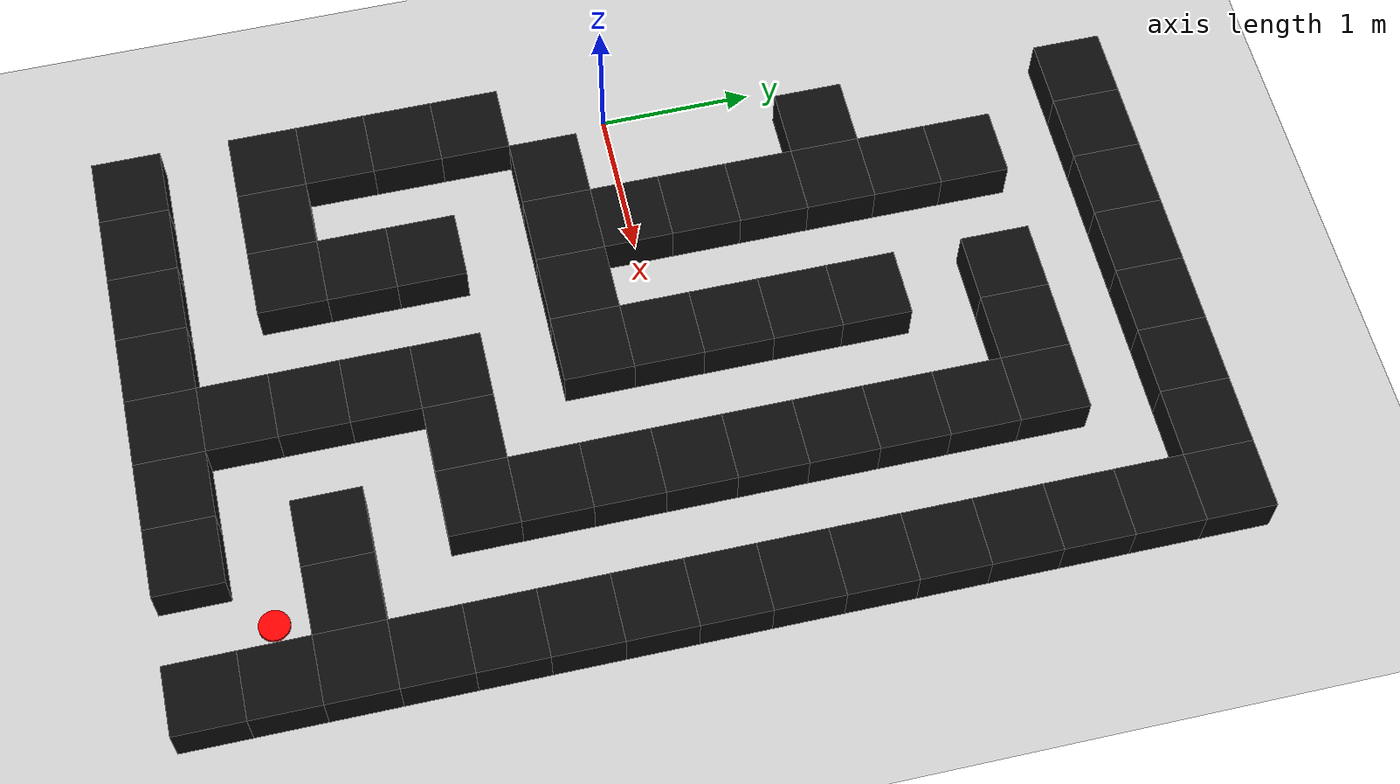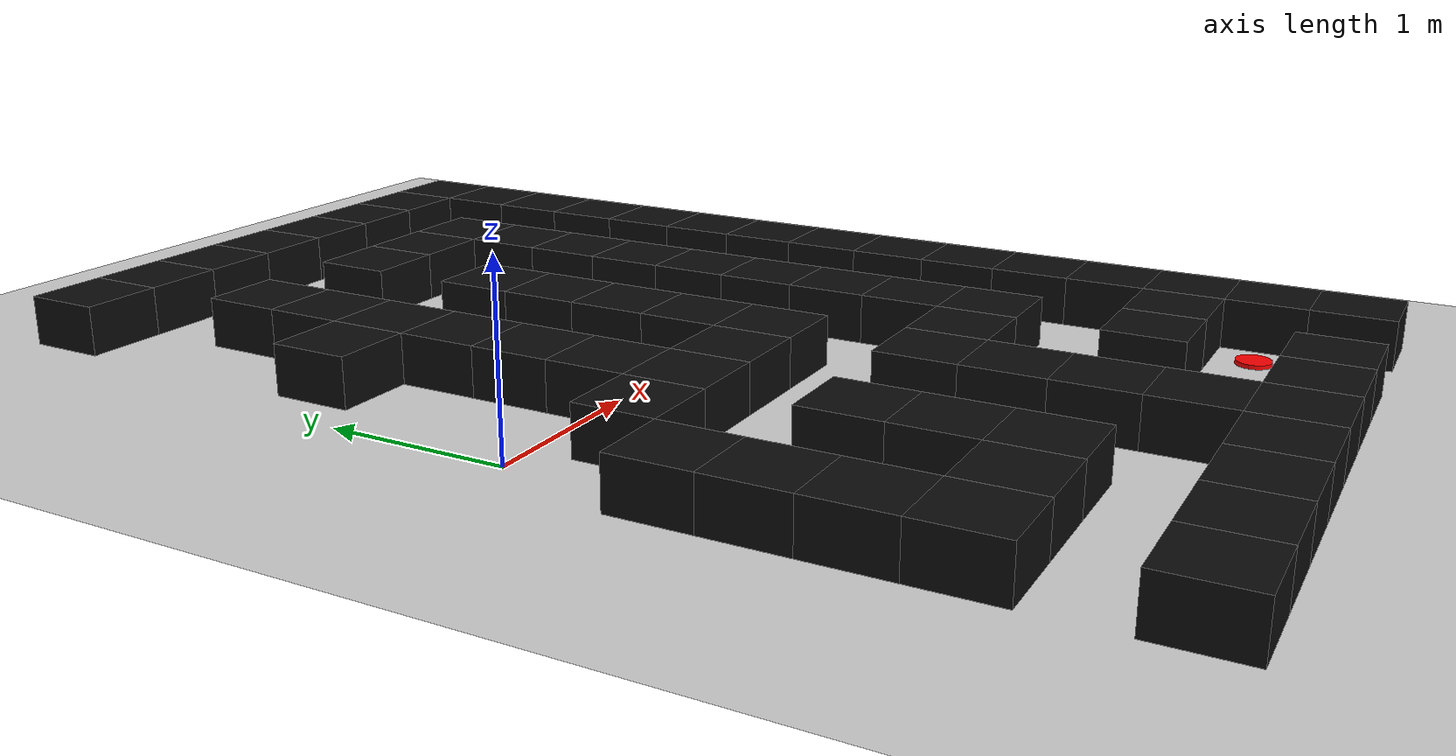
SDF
<sdf version="1.9">
 <world name="maze_islands_world">
  <model name="ground_plane">
   <static>true</static>
   <link name="link">
    <collision name="collision">
     <geometry><plane><normal>0 0 1</normal><size>30 30</size></plane></geometry>
    </collision>
    <visual name="visual">
     <geometry><plane><normal>0 0 1</normal><size>30 30</size></plane></geometry>
     <material><ambient>0.82 0.82 0.82 1</ambient><diffuse>0.82 0.82 0.82 1</diffuse></material>
    </visual>
   </link>
  </model>
  <model name="wall_8">
   <static>true</static>
   <pose>0.45 3.15 0.14 0 0 0</pose>
   <link name="link">
    <collision name="collision"><geometry><box><size>0.45 0.45 0.28</size></box></geometry></collision>
    <visual name="visual">
     <geometry><box><size>0.45 0.45 0.28</size></box></geometry>
     <material><ambient>0.05 0.05 0.05 1</ambient><diffuse>0.05 0.05 0.05 1</diffuse></material>
    </visual>
   </link>
  </model>
  <model name="wall_9">
   <static>true</static>
   <pose>0.9 3.15 0.14 0 0 0</pose>
   <link name="link">
    <collision name="collision"><geometry><box><size>0.45 0.45 0.28</size></box></geometry></collision>
    <visual name="visual">
     <geometry><box><size>0.45 0.45 0.28</size></box></geometry>
     <material><ambient>0.05 0.05 0.05 1</ambient><diffuse>0.05 0.05 0.05 1</diffuse></material>
    </visual>
   </link>
  </model>
  <model name="wall_10">
   <static>true</static>
   <pose>1.35 3.15 0.14 0 0 0</pose>
   <link name="link">
    <collision name="collision"><geometry><box><size>0.45 0.45 0.28</size></box></geometry></collision>
    <visual name="visual">
     <geometry><box><size>0.45 0.45 0.28</size></box></geometry>
     <material><ambient>0.05 0.05 0.05 1</ambient><diffuse>0.05 0.05 0.05 1</diffuse></material>
    </visual>
   </link>
  </model>
  <model name="wall_11">
   <static>true</static>
   <pose>1.8 3.15 0.14 0 0 0</pose>
   <link name="link">
    <collision name="collision"><geometry><box><size>0.45 0.45 0.28</size></box></geometry></collision>
    <visual name="visual">
     <geometry><box><size>0.45 0.45 0.28</size></box></geometry>
     <material><ambient>0.05 0.05 0.05 1</ambient><diffuse>0.05 0.05 0.05 1</diffuse></material>
    </visual>
   </link>
  </model>
  <model name="wall_12">
   <static>true</static>
   <pose>2.25 3.15 0.14 0 0 0</pose>
   <link name="link">
    <collision name="collision"><geometry><box><size>0.45 0.45 0.28</size></box></geometry></collision>
    <visual name="visual">
     <geometry><box><size>0.45 0.45 0.28</size></box></geometry>
     <material><ambient>0.05 0.05 0.05 1</ambient><diffuse>0.05 0.05 0.05 1</diffuse></material>
    </visual>
   </link>
  </model>
  <model name="wall_13">
   <static>true</static>
   <pose>2.7 3.15 0.14 0 0 0</pose>
   <link name="link">
    <collision name="collision"><geometry><box><size>0.45 0.45 0.28</size></box></geometry></collision>
    <visual name="visual">
     <geometry><box><size>0.45 0.45 0.28</size></box></geometry>
     <material><ambient>0.05 0.05 0.05 1</ambient><diffuse>0.05 0.05 0.05 1</diffuse></material>
    </visual>
   </link>
  </model>
  <model name="wall_14">
   <static>true</static>
   <pose>3.15 3.15 0.14 0 0 0</pose>
   <link name="link">
    <collision name="collision"><geometry><box><size>0.45 0.45 0.28</size></box></geometry></collision>
    <visual name="visual">
     <geometry><box><size>0.45 0.45 0.28</size></box></geometry>
     <material><ambient>0.05 0.05 0.05 1</ambient><diffuse>0.05 0.05 0.05 1</diffuse></material>
    </visual>
   </link>
  </model>
  <model name="wall_15">
   <static>true</static>
   <pose>3.6 3.15 0.14 0 0 0</pose>
   <link name="link">
    <collision name="collision"><geometry><box><size>0.45 0.45 0.28</size></box></geometry></collision>
    <visual name="visual">
     <geometry><box><size>0.45 0.45 0.28</size></box></geometry>
     <material><ambient>0.05 0.05 0.05 1</ambient><diffuse>0.05 0.05 0.05 1</diffuse></material>
    </visual>
   </link>
  </model>
  <model name="wall_18">
   <static>true</static>
   <pose>3.6 2.7 0.14 0 0 0</pose>
   <link name="link">
    <collision name="collision"><geometry><box><size>0.45 0.45 0.28</size></box></geometry></collision>
    <visual name="visual">
     <geometry><box><size>0.45 0.45 0.28</size></box></geometry>
     <material><ambient>0.05 0.05 0.05 1</ambient><diffuse>0.05 0.05 0.05 1</diffuse></material>
    </visual>
   </link>
  </model>
  <model name="wall_26">
   <static>true</static>
   <pose>0.9 2.25 0.14 0 0 0</pose>
   <link name="link">
    <collision name="collision"><geometry><box><size>0.45 0.45 0.28</size></box></geometry></collision>
    <visual name="visual">
     <geometry><box><size>0.45 0.45 0.28</size></box></geometry>
     <material><ambient>0.05 0.05 0.05 1</ambient><diffuse>0.05 0.05 0.05 1</diffuse></material>
    </visual>
   </link>
  </model>
  <model name="wall_27">
   <static>true</static>
   <pose>1.8 2.25 0.14 0 0 0</pose>
   <link name="link">
    <collision name="collision"><geometry><box><size>0.45 0.45 0.28</size></box></geometry></collision>
    <visual name="visual">
     <geometry><box><size>0.45 0.45 0.28</size></box></geometry>
     <material><ambient>0.05 0.05 0.05 1</ambient><diffuse>0.05 0.05 0.05 1</diffuse></material>
    </visual>
   </link>
  </model>
  <model name="wall_28">
   <static>true</static>
   <pose>2.25 2.25 0.14 0 0 0</pose>
   <link name="link">
    <collision name="collision"><geometry><box><size>0.45 0.45 0.28</size></box></geometry></collision>
    <visual name="visual">
     <geometry><box><size>0.45 0.45 0.28</size></box></geometry>
     <material><ambient>0.05 0.05 0.05 1</ambient><diffuse>0.05 0.05 0.05 1</diffuse></material>
    </visual>
   </link>
  </model>
  <model name="wall_29">
   <static>true</static>
   <pose>2.7 2.25 0.14 0 0 0</pose>
   <link name="link">
    <collision name="collision"><geometry><box><size>0.45 0.45 0.28</size></box></geometry></collision>
    <visual name="visual">
     <geometry><box><size>0.45 0.45 0.28</size></box></geometry>
     <material><ambient>0.05 0.05 0.05 1</ambient><diffuse>0.05 0.05 0.05 1</diffuse></material>
    </visual>
   </link>
  </model>
  <model name="wall_30">
   <static>true</static>
   <pose>3.6 2.25 0.14 0 0 0</pose>
   <link name="link">
    <collision name="collision"><geometry><box><size>0.45 0.45 0.28</size></box></geometry></collision>
    <visual name="visual">
     <geometry><box><size>0.45 0.45 0.28</size></box></geometry>
     <material><ambient>0.05 0.05 0.05 1</ambient><diffuse>0.05 0.05 0.05 1</diffuse></material>
    </visual>
   </link>
  </model>
  <model name="wall_34">
   <static>true</static>
   <pose>0.9 1.8 0.14 0 0 0</pose>
   <link name="link">
    <collision name="collision"><geometry><box><size>0.45 0.45 0.28</size></box></geometry></collision>
    <visual name="visual">
     <geometry><box><size>0.45 0.45 0.28</size></box></geometry>
     <material><ambient>0.05 0.05 0.05 1</ambient><diffuse>0.05 0.05 0.05 1</diffuse></material>
    </visual>
   </link>
  </model>
  <model name="wall_35">
   <static>true</static>
   <pose>2.7 1.8 0.14 0 0 0</pose>
   <link name="link">
    <collision name="collision"><geometry><box><size>0.45 0.45 0.28</size></box></geometry></collision>
    <visual name="visual">
     <geometry><box><size>0.45 0.45 0.28</size></box></geometry>
     <material><ambient>0.05 0.05 0.05 1</ambient><diffuse>0.05 0.05 0.05 1</diffuse></material>
    </visual>
   </link>
  </model>
  <model name="wall_36">
   <static>true</static>
   <pose>3.6 1.8 0.14 0 0 0</pose>
   <link name="link">
    <collision name="collision"><geometry><box><size>0.45 0.45 0.28</size></box></geometry></collision>
    <visual name="visual">
     <geometry><box><size>0.45 0.45 0.28</size></box></geometry>
     <material><ambient>0.05 0.05 0.05 1</ambient><diffuse>0.05 0.05 0.05 1</diffuse></material>
    </visual>
   </link>
  </model>
  <model name="wall_44">
   <static>true</static>
   <pose>0.45 1.35 0.14 0 0 0</pose>
   <link name="link">
    <collision name="collision"><geometry><box><size>0.45 0.45 0.28</size></box></geometry></collision>
    <visual name="visual">
     <geometry><box><size>0.45 0.45 0.28</size></box></geometry>
     <material><ambient>0.05 0.05 0.05 1</ambient><diffuse>0.05 0.05 0.05 1</diffuse></material>
    </visual>
   </link>
  </model>
  <model name="wall_45">
   <static>true</static>
   <pose>0.9 1.35 0.14 0 0 0</pose>
   <link name="link">
    <collision name="collision"><geometry><box><size>0.45 0.45 0.28</size></box></geometry></collision>
    <visual name="visual">
     <geometry><box><size>0.45 0.45 0.28</size></box></geometry>
     <material><ambient>0.05 0.05 0.05 1</ambient><diffuse>0.05 0.05 0.05 1</diffuse></material>
    </visual>
   </link>
  </model>
  <model name="wall_46">
   <static>true</static>
   <pose>1.8 1.35 0.14 0 0 0</pose>
   <link name="link">
    <collision name="collision"><geometry><box><size>0.45 0.45 0.28</size></box></geometry></collision>
    <visual name="visual">
     <geometry><box><size>0.45 0.45 0.28</size></box></geometry>
     <material><ambient>0.05 0.05 0.05 1</ambient><diffuse>0.05 0.05 0.05 1</diffuse></material>
    </visual>
   </link>
  </model>
  <model name="wall_47">
   <static>true</static>
   <pose>2.7 1.35 0.14 0 0 0</pose>
   <link name="link">
    <collision name="collision"><geometry><box><size>0.45 0.45 0.28</size></box></geometry></collision>
    <visual name="visual">
     <geometry><box><size>0.45 0.45 0.28</size></box></geometry>
     <material><ambient>0.05 0.05 0.05 1</ambient><diffuse>0.05 0.05 0.05 1</diffuse></material>
    </visual>
   </link>
  </model>
  <model name="wall_48">
   <static>true</static>
   <pose>3.6 1.35 0.14 0 0 0</pose>
   <link name="link">
    <collision name="collision"><geometry><box><size>0.45 0.45 0.28</size></box></geometry></collision>
    <visual name="visual">
     <geometry><box><size>0.45 0.45 0.28</size></box></geometry>
     <material><ambient>0.05 0.05 0.05 1</ambient><diffuse>0.05 0.05 0.05 1</diffuse></material>
    </visual>
   </link>
  </model>
  <model name="wall_51">
   <static>true</static>
   <pose>0.9 0.9 0.14 0 0 0</pose>
   <link name="link">
    <collision name="collision"><geometry><box><size>0.45 0.45 0.28</size></box></geometry></collision>
    <visual name="visual">
     <geometry><box><size>0.45 0.45 0.28</size></box></geometry>
     <material><ambient>0.05 0.05 0.05 1</ambient><diffuse>0.05 0.05 0.05 1</diffuse></material>
    </visual>
   </link>
  </model>
  <model name="wall_52">
   <static>true</static>
   <pose>1.8 0.9 0.14 0 0 0</pose>
   <link name="link">
    <collision name="collision"><geometry><box><size>0.45 0.45 0.28</size></box></geometry></collision>
    <visual name="visual">
     <geometry><box><size>0.45 0.45 0.28</size></box></geometry>
     <material><ambient>0.05 0.05 0.05 1</ambient><diffuse>0.05 0.05 0.05 1</diffuse></material>
    </visual>
   </link>
  </model>
  <model name="wall_53">
   <static>true</static>
   <pose>2.7 0.9 0.14 0 0 0</pose>
   <link name="link">
    <collision name="collision"><geometry><box><size>0.45 0.45 0.28</size></box></geometry></collision>
    <visual name="visual">
     <geometry><box><size>0.45 0.45 0.28</size></box></geometry>
     <material><ambient>0.05 0.05 0.05 1</ambient><diffuse>0.05 0.05 0.05 1</diffuse></material>
    </visual>
   </link>
  </model>
  <model name="wall_54">
   <static>true</static>
   <pose>3.6 0.9 0.14 0 0 0</pose>
   <link name="link">
    <collision name="collision"><geometry><box><size>0.45 0.45 0.28</size></box></geometry></collision>
    <visual name="visual">
     <geometry><box><size>0.45 0.45 0.28</size></box></geometry>
     <material><ambient>0.05 0.05 0.05 1</ambient><diffuse>0.05 0.05 0.05 1</diffuse></material>
    </visual>
   </link>
  </model>
  <model name="wall_62">
   <static>true</static>
   <pose>0.9 0.45 0.14 0 0 0</pose>
   <link name="link">
    <collision name="collision"><geometry><box><size>0.45 0.45 0.28</size></box></geometry></collision>
    <visual name="visual">
     <geometry><box><size>0.45 0.45 0.28</size></box></geometry>
     <material><ambient>0.05 0.05 0.05 1</ambient><diffuse>0.05 0.05 0.05 1</diffuse></material>
    </visual>
   </link>
  </model>
  <model name="wall_63">
   <static>true</static>
   <pose>1.8 0.45 0.14 0 0 0</pose>
   <link name="link">
    <collision name="collision"><geometry><box><size>0.45 0.45 0.28</size></box></geometry></collision>
    <visual name="visual">
     <geometry><box><size>0.45 0.45 0.28</size></box></geometry>
     <material><ambient>0.05 0.05 0.05 1</ambient><diffuse>0.05 0.05 0.05 1</diffuse></material>
    </visual>
   </link>
  </model>
  <model name="wall_64">
   <static>true</static>
   <pose>2.7 0.45 0.14 0 0 0</pose>
   <link name="link">
    <collision name="collision"><geometry><box><size>0.45 0.45 0.28</size></box></geometry></collision>
    <visual name="visual">
     <geometry><box><size>0.45 0.45 0.28</size></box></geometry>
     <material><ambient>0.05 0.05 0.05 1</ambient><diffuse>0.05 0.05 0.05 1</diffuse></material>
    </visual>
   </link>
  </model>
  <model name="wall_65">
   <static>true</static>
   <pose>3.6 0.45 0.14 0 0 0</pose>
   <link name="link">
    <collision name="collision"><geometry><box><size>0.45 0.45 0.28</size></box></geometry></collision>
    <visual name="visual">
     <geometry><box><size>0.45 0.45 0.28</size></box></geometry>
     <material><ambient>0.05 0.05 0.05 1</ambient><diffuse>0.05 0.05 0.05 1</diffuse></material>
    </visual>
   </link>
  </model>
  <model name="wall_69">
   <static>true</static>
   <pose>0.9 0.0 0.14 0 0 0</pose>
   <link name="link">
    <collision name="collision"><geometry><box><size>0.45 0.45 0.28</size></box></geometry></collision>
    <visual name="visual">
     <geometry><box><size>0.45 0.45 0.28</size></box></geometry>
     <material><ambient>0.05 0.05 0.05 1</ambient><diffuse>0.05 0.05 0.05 1</diffuse></material>
    </visual>
   </link>
  </model>
  <model name="wall_70">
   <static>true</static>
   <pose>1.8 0.0 0.14 0 0 0</pose>
   <link name="link">
    <collision name="collision"><geometry><box><size>0.45 0.45 0.28</size></box></geometry></collision>
    <visual name="visual">
     <geometry><box><size>0.45 0.45 0.28</size></box></geometry>
     <material><ambient>0.05 0.05 0.05 1</ambient><diffuse>0.05 0.05 0.05 1</diffuse></material>
    </visual>
   </link>
  </model>
  <model name="wall_71">
   <static>true</static>
   <pose>2.7 0.0 0.14 0 0 0</pose>
   <link name="link">
    <collision name="collision"><geometry><box><size>0.45 0.45 0.28</size></box></geometry></collision>
    <visual name="visual">
     <geometry><box><size>0.45 0.45 0.28</size></box></geometry>
     <material><ambient>0.05 0.05 0.05 1</ambient><diffuse>0.05 0.05 0.05 1</diffuse></material>
    </visual>
   </link>
  </model>
  <model name="wall_72">
   <static>true</static>
   <pose>3.6 0.0 0.14 0 0 0</pose>
   <link name="link">
    <collision name="collision"><geometry><box><size>0.45 0.45 0.28</size></box></geometry></collision>
    <visual name="visual">
     <geometry><box><size>0.45 0.45 0.28</size></box></geometry>
     <material><ambient>0.05 0.05 0.05 1</ambient><diffuse>0.05 0.05 0.05 1</diffuse></material>
    </visual>
   </link>
  </model>
  <model name="wall_79">
   <static>true</static>
   <pose>0.45 -0.45 0.14 0 0 0</pose>
   <link name="link">
    <collision name="collision"><geometry><box><size>0.45 0.45 0.28</size></box></geometry></collision>
    <visual name="visual">
     <geometry><box><size>0.45 0.45 0.28</size></box></geometry>
     <material><ambient>0.05 0.05 0.05 1</ambient><diffuse>0.05 0.05 0.05 1</diffuse></material>
    </visual>
   </link>
  </model>
  <model name="wall_80">
   <static>true</static>
   <pose>0.9 -0.45 0.14 0 0 0</pose>
   <link name="link">
    <collision name="collision"><geometry><box><size>0.45 0.45 0.28</size></box></geometry></collision>
    <visual name="visual">
     <geometry><box><size>0.45 0.45 0.28</size></box></geometry>
     <material><ambient>0.05 0.05 0.05 1</ambient><diffuse>0.05 0.05 0.05 1</diffuse></material>
    </visual>
   </link>
  </model>
  <model name="wall_81">
   <static>true</static>
   <pose>1.35 -0.45 0.14 0 0 0</pose>
   <link name="link">
    <collision name="collision"><geometry><box><size>0.45 0.45 0.28</size></box></geometry></collision>
    <visual name="visual">
     <geometry><box><size>0.45 0.45 0.28</size></box></geometry>
     <material><ambient>0.05 0.05 0.05 1</ambient><diffuse>0.05 0.05 0.05 1</diffuse></material>
    </visual>
   </link>
  </model>
  <model name="wall_82">
   <static>true</static>
   <pose>1.8 -0.45 0.14 0 0 0</pose>
   <link name="link">
    <collision name="collision"><geometry><box><size>0.45 0.45 0.28</size></box></geometry></collision>
    <visual name="visual">
     <geometry><box><size>0.45 0.45 0.28</size></box></geometry>
     <material><ambient>0.05 0.05 0.05 1</ambient><diffuse>0.05 0.05 0.05 1</diffuse></material>
    </visual>
   </link>
  </model>
  <model name="wall_83">
   <static>true</static>
   <pose>2.7 -0.45 0.14 0 0 0</pose>
   <link name="link">
    <collision name="collision"><geometry><box><size>0.45 0.45 0.28</size></box></geometry></collision>
    <visual name="visual">
     <geometry><box><size>0.45 0.45 0.28</size></box></geometry>
     <material><ambient>0.05 0.05 0.05 1</ambient><diffuse>0.05 0.05 0.05 1</diffuse></material>
    </visual>
   </link>
  </model>
  <model name="wall_84">
   <static>true</static>
   <pose>3.6 -0.45 0.14 0 0 0</pose>
   <link name="link">
    <collision name="collision"><geometry><box><size>0.45 0.45 0.28</size></box></geometry></collision>
    <visual name="visual">
     <geometry><box><size>0.45 0.45 0.28</size></box></geometry>
     <material><ambient>0.05 0.05 0.05 1</ambient><diffuse>0.05 0.05 0.05 1</diffuse></material>
    </visual>
   </link>
  </model>
  <model name="wall_88">
   <static>true</static>
   <pose>0.0 -0.9 0.14 0 0 0</pose>
   <link name="link">
    <collision name="collision"><geometry><box><size>0.45 0.45 0.28</size></box></geometry></collision>
    <visual name="visual">
     <geometry><box><size>0.45 0.45 0.28</size></box></geometry>
     <material><ambient>0.05 0.05 0.05 1</ambient><diffuse>0.05 0.05 0.05 1</diffuse></material>
    </visual>
   </link>
  </model>
  <model name="wall_89">
   <static>true</static>
   <pose>2.7 -0.9 0.14 0 0 0</pose>
   <link name="link">
    <collision name="collision"><geometry><box><size>0.45 0.45 0.28</size></box></geometry></collision>
    <visual name="visual">
     <geometry><box><size>0.45 0.45 0.28</size></box></geometry>
     <material><ambient>0.05 0.05 0.05 1</ambient><diffuse>0.05 0.05 0.05 1</diffuse></material>
    </visual>
   </link>
  </model>
  <model name="wall_90">
   <static>true</static>
   <pose>3.6 -0.9 0.14 0 0 0</pose>
   <link name="link">
    <collision name="collision"><geometry><box><size>0.45 0.45 0.28</size></box></geometry></collision>
    <visual name="visual">
     <geometry><box><size>0.45 0.45 0.28</size></box></geometry>
     <material><ambient>0.05 0.05 0.05 1</ambient><diffuse>0.05 0.05 0.05 1</diffuse></material>
    </visual>
   </link>
  </model>
  <model name="wall_97">
   <static>true</static>
   <pose>0.0 -1.35 0.14 0 0 0</pose>
   <link name="link">
    <collision name="collision"><geometry><box><size>0.45 0.45 0.28</size></box></geometry></collision>
    <visual name="visual">
     <geometry><box><size>0.45 0.45 0.28</size></box></geometry>
     <material><ambient>0.05 0.05 0.05 1</ambient><diffuse>0.05 0.05 0.05 1</diffuse></material>
    </visual>
   </link>
  </model>
  <model name="wall_98">
   <static>true</static>
   <pose>0.9 -1.35 0.14 0 0 0</pose>
   <link name="link">
    <collision name="collision"><geometry><box><size>0.45 0.45 0.28</size></box></geometry></collision>
    <visual name="visual">
     <geometry><box><size>0.45 0.45 0.28</size></box></geometry>
     <material><ambient>0.05 0.05 0.05 1</ambient><diffuse>0.05 0.05 0.05 1</diffuse></material>
    </visual>
   </link>
  </model>
  <model name="wall_99">
   <static>true</static>
   <pose>1.8 -1.35 0.14 0 0 0</pose>
   <link name="link">
    <collision name="collision"><geometry><box><size>0.45 0.45 0.28</size></box></geometry></collision>
    <visual name="visual">
     <geometry><box><size>0.45 0.45 0.28</size></box></geometry>
     <material><ambient>0.05 0.05 0.05 1</ambient><diffuse>0.05 0.05 0.05 1</diffuse></material>
    </visual>
   </link>
  </model>
  <model name="wall_100">
   <static>true</static>
   <pose>2.25 -1.35 0.14 0 0 0</pose>
   <link name="link">
    <collision name="collision"><geometry><box><size>0.45 0.45 0.28</size></box></geometry></collision>
    <visual name="visual">
     <geometry><box><size>0.45 0.45 0.28</size></box></geometry>
     <material><ambient>0.05 0.05 0.05 1</ambient><diffuse>0.05 0.05 0.05 1</diffuse></material>
    </visual>
   </link>
  </model>
  <model name="wall_101">
   <static>true</static>
   <pose>2.7 -1.35 0.14 0 0 0</pose>
   <link name="link">
    <collision name="collision"><geometry><box><size>0.45 0.45 0.28</size></box></geometry></collision>
    <visual name="visual">
     <geometry><box><size>0.45 0.45 0.28</size></box></geometry>
     <material><ambient>0.05 0.05 0.05 1</ambient><diffuse>0.05 0.05 0.05 1</diffuse></material>
    </visual>
   </link>
  </model>
  <model name="wall_102">
   <static>true</static>
   <pose>3.6 -1.35 0.14 0 0 0</pose>
   <link name="link">
    <collision name="collision"><geometry><box><size>0.45 0.45 0.28</size></box></geometry></collision>
    <visual name="visual">
     <geometry><box><size>0.45 0.45 0.28</size></box></geometry>
     <material><ambient>0.05 0.05 0.05 1</ambient><diffuse>0.05 0.05 0.05 1</diffuse></material>
    </visual>
   </link>
  </model>
  <model name="wall_105">
   <static>true</static>
   <pose>0.0 -1.8 0.14 0 0 0</pose>
   <link name="link">
    <collision name="collision"><geometry><box><size>0.45 0.45 0.28</size></box></geometry></collision>
    <visual name="visual">
     <geometry><box><size>0.45 0.45 0.28</size></box></geometry>
     <material><ambient>0.05 0.05 0.05 1</ambient><diffuse>0.05 0.05 0.05 1</diffuse></material>
    </visual>
   </link>
  </model>
  <model name="wall_106">
   <static>true</static>
   <pose>0.9 -1.8 0.14 0 0 0</pose>
   <link name="link">
    <collision name="collision"><geometry><box><size>0.45 0.45 0.28</size></box></geometry></collision>
    <visual name="visual">
     <geometry><box><size>0.45 0.45 0.28</size></box></geometry>
     <material><ambient>0.05 0.05 0.05 1</ambient><diffuse>0.05 0.05 0.05 1</diffuse></material>
    </visual>
   </link>
  </model>
  <model name="wall_107">
   <static>true</static>
   <pose>1.8 -1.8 0.14 0 0 0</pose>
   <link name="link">
    <collision name="collision"><geometry><box><size>0.45 0.45 0.28</size></box></geometry></collision>
    <visual name="visual">
     <geometry><box><size>0.45 0.45 0.28</size></box></geometry>
     <material><ambient>0.05 0.05 0.05 1</ambient><diffuse>0.05 0.05 0.05 1</diffuse></material>
    </visual>
   </link>
  </model>
  <model name="wall_108">
   <static>true</static>
   <pose>3.6 -1.8 0.14 0 0 0</pose>
   <link name="link">
    <collision name="collision"><geometry><box><size>0.45 0.45 0.28</size></box></geometry></collision>
    <visual name="visual">
     <geometry><box><size>0.45 0.45 0.28</size></box></geometry>
     <material><ambient>0.05 0.05 0.05 1</ambient><diffuse>0.05 0.05 0.05 1</diffuse></material>
    </visual>
   </link>
  </model>
  <model name="wall_114">
   <static>true</static>
   <pose>0.0 -2.25 0.14 0 0 0</pose>
   <link name="link">
    <collision name="collision"><geometry><box><size>0.45 0.45 0.28</size></box></geometry></collision>
    <visual name="visual">
     <geometry><box><size>0.45 0.45 0.28</size></box></geometry>
     <material><ambient>0.05 0.05 0.05 1</ambient><diffuse>0.05 0.05 0.05 1</diffuse></material>
    </visual>
   </link>
  </model>
  <model name="wall_115">
   <static>true</static>
   <pose>0.45 -2.25 0.14 0 0 0</pose>
   <link name="link">
    <collision name="collision"><geometry><box><size>0.45 0.45 0.28</size></box></geometry></collision>
    <visual name="visual">
     <geometry><box><size>0.45 0.45 0.28</size></box></geometry>
     <material><ambient>0.05 0.05 0.05 1</ambient><diffuse>0.05 0.05 0.05 1</diffuse></material>
    </visual>
   </link>
  </model>
  <model name="wall_116">
   <static>true</static>
   <pose>0.9 -2.25 0.14 0 0 0</pose>
   <link name="link">
    <collision name="collision"><geometry><box><size>0.45 0.45 0.28</size></box></geometry></collision>
    <visual name="visual">
     <geometry><box><size>0.45 0.45 0.28</size></box></geometry>
     <material><ambient>0.05 0.05 0.05 1</ambient><diffuse>0.05 0.05 0.05 1</diffuse></material>
    </visual>
   </link>
  </model>
  <model name="wall_117">
   <static>true</static>
   <pose>1.8 -2.25 0.14 0 0 0</pose>
   <link name="link">
    <collision name="collision"><geometry><box><size>0.45 0.45 0.28</size></box></geometry></collision>
    <visual name="visual">
     <geometry><box><size>0.45 0.45 0.28</size></box></geometry>
     <material><ambient>0.05 0.05 0.05 1</ambient><diffuse>0.05 0.05 0.05 1</diffuse></material>
    </visual>
   </link>
  </model>
  <model name="wall_118">
   <static>true</static>
   <pose>2.7 -2.25 0.14 0 0 0</pose>
   <link name="link">
    <collision name="collision"><geometry><box><size>0.45 0.45 0.28</size></box></geometry></collision>
    <visual name="visual">
     <geometry><box><size>0.45 0.45 0.28</size></box></geometry>
     <material><ambient>0.05 0.05 0.05 1</ambient><diffuse>0.05 0.05 0.05 1</diffuse></material>
    </visual>
   </link>
  </model>
  <model name="wall_119">
   <static>true</static>
   <pose>3.15 -2.25 0.14 0 0 0</pose>
   <link name="link">
    <collision name="collision"><geometry><box><size>0.45 0.45 0.28</size></box></geometry></collision>
    <visual name="visual">
     <geometry><box><size>0.45 0.45 0.28</size></box></geometry>
     <material><ambient>0.05 0.05 0.05 1</ambient><diffuse>0.05 0.05 0.05 1</diffuse></material>
    </visual>
   </link>
  </model>
  <model name="wall_120">
   <static>true</static>
   <pose>3.6 -2.25 0.14 0 0 0</pose>
   <link name="link">
    <collision name="collision"><geometry><box><size>0.45 0.45 0.28</size></box></geometry></collision>
    <visual name="visual">
     <geometry><box><size>0.45 0.45 0.28</size></box></geometry>
     <material><ambient>0.05 0.05 0.05 1</ambient><diffuse>0.05 0.05 0.05 1</diffuse></material>
    </visual>
   </link>
  </model>
  <model name="wall_122">
   <static>true</static>
   <pose>1.8 -2.7 0.14 0 0 0</pose>
   <link name="link">
    <collision name="collision"><geometry><box><size>0.45 0.45 0.28</size></box></geometry></collision>
    <visual name="visual">
     <geometry><box><size>0.45 0.45 0.28</size></box></geometry>
     <material><ambient>0.05 0.05 0.05 1</ambient><diffuse>0.05 0.05 0.05 1</diffuse></material>
    </visual>
   </link>
  </model>
  <model name="wall_123">
   <static>true</static>
   <pose>3.6 -2.7 0.14 0 0 0</pose>
   <link name="link">
    <collision name="collision"><geometry><box><size>0.45 0.45 0.28</size></box></geometry></collision>
    <visual name="visual">
     <geometry><box><size>0.45 0.45 0.28</size></box></geometry>
     <material><ambient>0.05 0.05 0.05 1</ambient><diffuse>0.05 0.05 0.05 1</diffuse></material>
    </visual>
   </link>
  </model>
  <model name="wall_132">
   <static>true</static>
   <pose>0.0 -3.15 0.14 0 0 0</pose>
   <link name="link">
    <collision name="collision"><geometry><box><size>0.45 0.45 0.28</size></box></geometry></collision>
    <visual name="visual">
     <geometry><box><size>0.45 0.45 0.28</size></box></geometry>
     <material><ambient>0.05 0.05 0.05 1</ambient><diffuse>0.05 0.05 0.05 1</diffuse></material>
    </visual>
   </link>
  </model>
  <model name="wall_133">
   <static>true</static>
   <pose>0.45 -3.15 0.14 0 0 0</pose>
   <link name="link">
    <collision name="collision"><geometry><box><size>0.45 0.45 0.28</size></box></geometry></collision>
    <visual name="visual">
     <geometry><box><size>0.45 0.45 0.28</size></box></geometry>
     <material><ambient>0.05 0.05 0.05 1</ambient><diffuse>0.05 0.05 0.05 1</diffuse></material>
    </visual>
   </link>
  </model>
  <model name="wall_134">
   <static>true</static>
   <pose>0.9 -3.15 0.14 0 0 0</pose>
   <link name="link">
    <collision name="collision"><geometry><box><size>0.45 0.45 0.28</size></box></geometry></collision>
    <visual name="visual">
     <geometry><box><size>0.45 0.45 0.28</size></box></geometry>
     <material><ambient>0.05 0.05 0.05 1</ambient><diffuse>0.05 0.05 0.05 1</diffuse></material>
    </visual>
   </link>
  </model>
  <model name="wall_135">
   <static>true</static>
   <pose>1.35 -3.15 0.14 0 0 0</pose>
   <link name="link">
    <collision name="collision"><geometry><box><size>0.45 0.45 0.28</size></box></geometry></collision>
    <visual name="visual">
     <geometry><box><size>0.45 0.45 0.28</size></box></geometry>
     <material><ambient>0.05 0.05 0.05 1</ambient><diffuse>0.05 0.05 0.05 1</diffuse></material>
    </visual>
   </link>
  </model>
  <model name="wall_136">
   <static>true</static>
   <pose>1.8 -3.15 0.14 0 0 0</pose>
   <link name="link">
    <collision name="collision"><geometry><box><size>0.45 0.45 0.28</size></box></geometry></collision>
    <visual name="visual">
     <geometry><box><size>0.45 0.45 0.28</size></box></geometry>
     <material><ambient>0.05 0.05 0.05 1</ambient><diffuse>0.05 0.05 0.05 1</diffuse></material>
    </visual>
   </link>
  </model>
  <model name="wall_137">
   <static>true</static>
   <pose>2.25 -3.15 0.14 0 0 0</pose>
   <link name="link">
    <collision name="collision"><geometry><box><size>0.45 0.45 0.28</size></box></geometry></collision>
    <visual name="visual">
     <geometry><box><size>0.45 0.45 0.28</size></box></geometry>
     <material><ambient>0.05 0.05 0.05 1</ambient><diffuse>0.05 0.05 0.05 1</diffuse></material>
    </visual>
   </link>
  </model>
  <model name="wall_138">
   <static>true</static>
   <pose>2.7 -3.15 0.14 0 0 0</pose>
   <link name="link">
    <collision name="collision"><geometry><box><size>0.45 0.45 0.28</size></box></geometry></collision>
    <visual name="visual">
     <geometry><box><size>0.45 0.45 0.28</size></box></geometry>
     <material><ambient>0.05 0.05 0.05 1</ambient><diffuse>0.05 0.05 0.05 1</diffuse></material>
    </visual>
   </link>
  </model>
  <model name="wall_139">
   <static>true</static>
   <pose>3.6 -3.15 0.14 0 0 0</pose>
   <link name="link">
    <collision name="collision"><geometry><box><size>0.45 0.45 0.28</size></box></geometry></collision>
    <visual name="visual">
     <geometry><box><size>0.45 0.45 0.28</size></box></geometry>
     <material><ambient>0.05 0.05 0.05 1</ambient><diffuse>0.05 0.05 0.05 1</diffuse></material>
    </visual>
   </link>
  </model>
  <model name="goal_marker">
   <static>true</static>
   <pose>3.15 -2.7 0.012 0 0 0</pose>
   <link name="link">
    <visual name="visual">
     <geometry><cylinder><radius>0.099</radius><length>0.024</length></cylinder></geometry>
     <material><ambient>1 0 0 1</ambient><diffuse>1 0 0 1</diffuse></material>
    </visual>
   </link>
  </model>
 </world>
</sdf>
